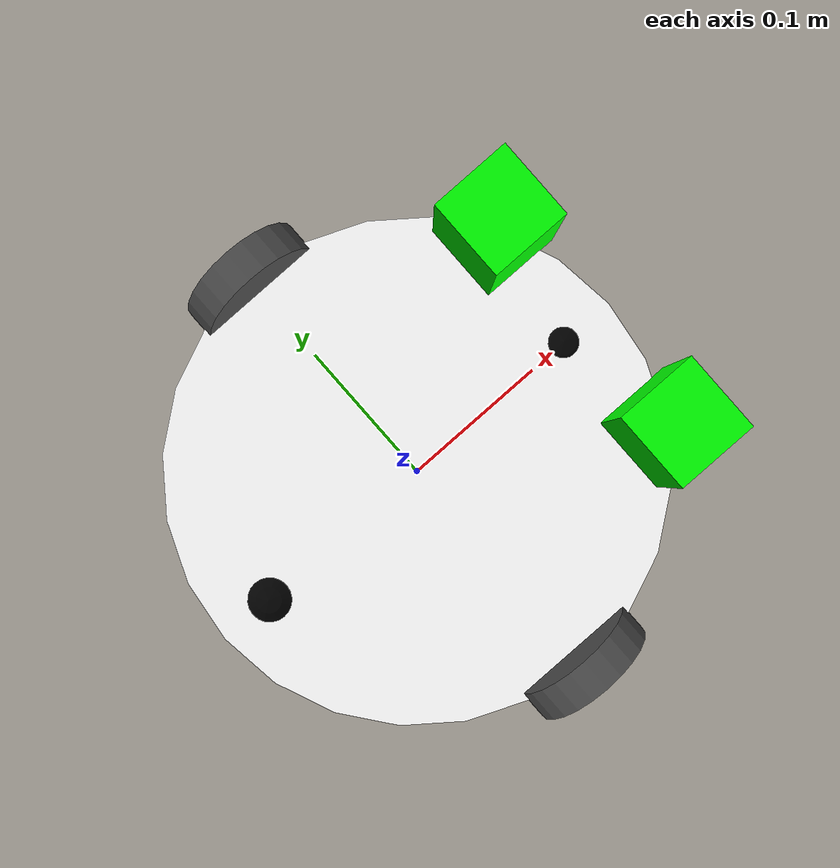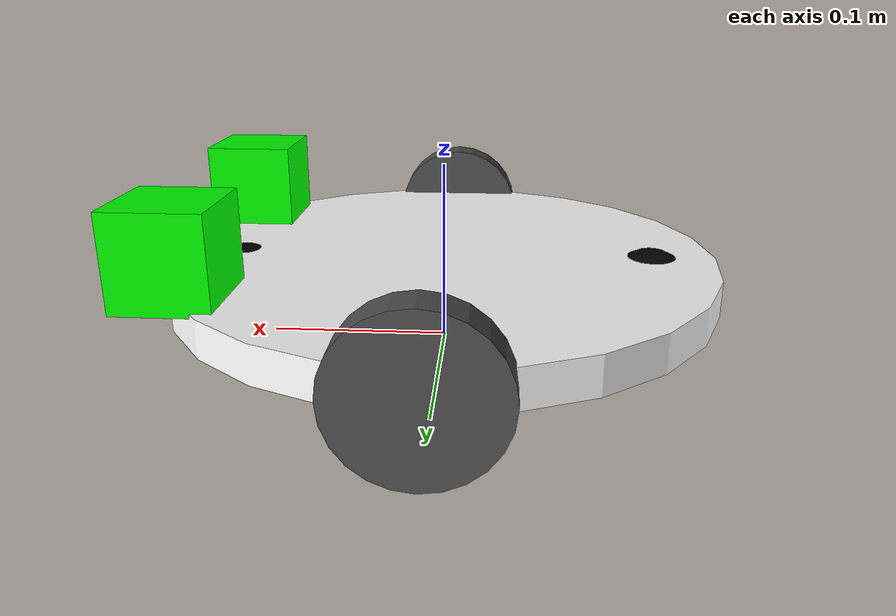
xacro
<?xml version="1.0"?>
<robot name="differential_wheeled_robot" xmlns:xacro="http://ros.org/wiki/xacro">

  <xacro:include filename="$(find mastering_ros_robot_description_pkg)/urdf/wheel.urdf.xacro" />

<!-- Defining the colors used in this robot -->
  <material name="Black">
    <color rgba="0.0 0.0 0.0 1.0"/>
  </material>

  <material name="Red">
    <color rgba="0.8 0.0 0.0 1.0"/>
  </material>

  <material name="White">
    <color rgba="1.0 1.0 1.0 1.0"/>
  </material>

  <material name="Blue">
    <color rgba="0.0 0.0 0.8 1.0"/>
  </material>

  <material name="Green">
    <color rgba="0.0 1.0 0.0 1.0"/>
  </material>

  <!-- PROPERTY LIST -->
  <!--All units in m-kg-s-radians unit system -->
  <xacro:property name="M_PI" value="3.1415926535897931" />
  <xacro:property name="M_PI_2" value="1.570796327" />
  <xacro:property name="DEG_TO_RAD" value="0.017453293" />

  <!-- Main body radius and height -->
  <!-- Main Body Cylinder base   -->
  <xacro:property name="base_height" value="0.02" />
  <xacro:property name="base_radius" value="0.15" />
  <xacro:property name="base_mass" value="5" /> <!-- in kg-->

  <!-- caster wheel radius and height -->
  <!-- caster wheel mass -->
  <xacro:property name="caster_f_height" value="0.04" />
  <xacro:property name="caster_f_radius" value="0.025" />
  <xacro:property name="caster_f_mass" value="0.5" /> <!-- in kg-->

  <!-- caster wheel radius and height -->
  <!-- caster wheel mass -->
  <xacro:property name="caster_b_height" value="0.04" />
  <xacro:property name="caster_b_radius" value="0.025" />
  <xacro:property name="caster_b_mass" value="0.5" /> <!-- in kg-->

  <!-- Wheels -->

  <xacro:property name="wheel_mass" value="2.5" /> --> <!-- in kg-->

  <xacro:property name="base_x_origin_to_wheel_origin" value="0.25" />
  <xacro:property name="base_y_origin_to_wheel_origin" value="0.3" />
  <xacro:property name="base_z_origin_to_wheel_origin" value="0.0" />

  <!-- Hokuyo Laser scanner -->
  <xacro:property name="hokuyo_size" value="0.05" />
  <xacro:property name="camera_size" value="0.05" />

  <!-- Macro for calculating inertia of cylinder -->
  <xacro:macro name="cylinder_inertia" params="m r h">
    <inertia  ixx="${m*(3*r*r+h*h)/12}" ixy = "0" ixz = "0"
              iyy="${m*(3*r*r+h*h)/12}" iyz = "0"
              izz="${m*r*r/2}" />
  </xacro:macro>

  <!-- BASE-FOOTPRINT -->
  <!-- base_footprint is a fictitious link(frame) that is on the ground right below base_link origin -->
  <link name="base_footprint">
    <inertial>
      <mass value="0.0001" />
      <origin xyz="0 0 0" />
      <inertia ixx="0.0001" ixy="0.0" ixz="0.0"
          iyy="0.0001" iyz="0.0"
          izz="0.0001" />
    </inertial>
    <visual>
        <origin xyz="0 0 0" rpy="0 0 0" />
        <geometry>
            <box size="0.001 0.001 0.001" />
        </geometry>
    </visual>
  </link>

  <gazebo reference="base_footprint">
    <turnGravityOff>false</turnGravityOff>
  </gazebo>

  <joint name="base_footprint_joint" type="fixed">
    <origin xyz="0 0 ${wheel_radius - base_z_origin_to_wheel_origin}" rpy="0 0 0" />
    <parent link="base_footprint"/>
    <child link="base_link" />
  </joint>

  <!-- BASE-LINK -->
  <!--Actual body/chassis of the robot-->
  <link name="base_link">
    <inertial>
      <mass value="${base_mass}" />
      <origin xyz="0 0 0" />
      <!--The 3x3 rotational inertia matrix. -->
        <cylinder_inertia  m="${base_mass}" r="${base_radius}" h="${base_height}" />

    </inertial>
    <visual>
      <origin xyz="0 0 0" rpy="0 0 0" />
      <geometry>

          <cylinder length="${base_height}" radius="${base_radius}" />

      </geometry>
      <material name="White" />
    </visual>
    <collision>
      <origin xyz="0 0 0" rpy="0 0 0 " />
      <geometry>

          <cylinder length="${base_height}" radius="${base_radius}" />

      </geometry>
    </collision>
  </link>
  <gazebo reference="base_link">
    <material>Gazebo/White</material>
    <turnGravityOff>false</turnGravityOff>
  </gazebo>

<!--Caster front  -->

    <link name="caster_front_link">

    <visual>
      <origin xyz="0 0.02 0" rpy="${M_PI/2} 0 0" />
      <geometry>
	<sphere radius="${caster_f_radius}" />
      </geometry>
      <material name="Black" />
    </visual>

      <collision>
        <geometry>

	<sphere radius="${caster_f_radius}" />

        </geometry>
      <origin xyz="0 0.02 0" rpy="${M_PI/2} 0 0" />
      </collision>
      <inertial>
        <mass value="${caster_f_mass}" />
        <origin xyz="0 0 0" />
        <inertia ixx="0.001" ixy="0.0" ixz="0.0"
                 iyy="0.001" iyz="0.0"
                 izz="0.001" />
      </inertial>
    </link>

 <joint name="caster_front_joint" type="fixed">
      <parent link="base_link"/>
      <child link="caster_front_link"/>
      <origin xyz="0.115 0.0 0.007" rpy="${-M_PI/2} 0 0"/>
    </joint>

  <gazebo reference="caster_front_link">
    <turnGravityOff>false</turnGravityOff>
  </gazebo>

<!--Caster back  -->

    <link name="caster_back_link">

    <visual>
      <origin xyz="0.02 0.02 0 " rpy="${M_PI/2} 0 0" />

      <geometry>

	<sphere radius="${caster_b_radius}" />

      </geometry>
      <material name="Black" />
    </visual>

      <collision>
        <geometry>
		<sphere radius="${caster_b_radius}" />
        </geometry>
      <origin xyz="0 0.02 0 " rpy="${M_PI/2} 0 0" />
      </collision>
      <inertial>
        <mass value="${caster_b_mass}" />
        <origin xyz="0 0 0" />
        <inertia ixx="0.001" ixy="0.0" ixz="0.0"
                 iyy="0.001" iyz="0.0"
                 izz="0.001" />
      </inertial>
    </link>

    <joint name="caster_back_joint" type="fixed">
      <parent link="base_link"/>
      <child link="caster_back_link"/>
      <origin xyz="-0.135 0.0 0.009" rpy="${-M_PI/2} 0 0"/>
    </joint>

  <gazebo reference="caster_back_link">
    <turnGravityOff>false</turnGravityOff>
  </gazebo>

<!-- Wheel Definitions -->

  <wheel fb="front" lr="right" parent="base_link" translateX="0" translateY="0.5" flipY="1"/>
  <wheel fb="front" lr="left" parent="base_link" translateX="0" translateY="-0.5" flipY="1"/>

  <!-- SENSORS -->

  <!-- camera_left -->
   <link name="camera_left">
    <visual>
      <origin xyz="0 0 0" rpy="0 0 0" />
      <geometry>
        <box size="${camera_size} ${camera_size} ${camera_size}"/>
      </geometry>
      <material name="Green" />
    </visual>
  </link>
  <joint name="camera_joint1" type="fixed">
    <origin xyz="${base_radius - camera_size/2} ${camera_size*1.5} ${base_height+camera_size/4}" rpy="0 0 0" />
    <parent link="base_link"/>
    <child link="camera_left" />
  </joint>
  <gazebo reference="camera_left">
    <material>Gazebo/Green</material>
    <turnGravityOff>false</turnGravityOff>
    <sensor name="camera_left" type="camera">
        <update_rate>30.0</update_rate>
        <camera>
          <horizontal_fov>1.3962634</horizontal_fov>
          <image>
            <width>800</width>
            <height>800</height>
            <format>R8G8B8</format>
          </image>
          <clip>
            <near>0.2</near>
            <far>300</far>
          </clip>
          <noise>
          <type>gaussian</type>
          <!-- Noise is sampled independently per pixel on each frame.
               That pixel's noise value is added to each of its color
               channels, which at that point lie in the range [0,1]. -->
          <mean>0.0</mean>
          <stddev>0.007</stddev>
        </noise>
        </camera>
        <plugin name="camera_controller" filename="libgazebo_ros_camera.so">
        <alwaysOn>true</alwaysOn>
        <updateRate>0.0</updateRate>
        <cameraName>camera/left</cameraName>
        <imageTopicName>image_raw</imageTopicName>
        <cameraInfoTopicName>camera_info</cameraInfoTopicName>
        <frameName>camera_left</frameName>
        <hackBaseline>0.07</hackBaseline>
        <distortionK1>0.0</distortionK1>
        <distortionK2>0.0</distortionK2>
        <distortionK3>0.0</distortionK3>
        <distortionT1>0.0</distortionT1>
        <distortionT2>0.0</distortionT2>
      </plugin>
    </sensor>
  </gazebo>

 <!-- camera_right -->
  <link name="camera_right">
   <visual>
     <origin xyz="0 0 0" rpy="0 0 0" />
     <geometry>
       <box size="${camera_size} ${camera_size} ${camera_size}"/>
     </geometry>
     <material name="Green" />
   </visual>
  </link>
  <joint name="camera_joint2" type="fixed">
   <origin xyz="${base_radius - camera_size/2} ${-camera_size*1.5} ${base_height+camera_size/4}" rpy="0 0 0" />
   <parent link="base_link"/>
   <child link="camera_right" />
  </joint>
  <gazebo reference="camera_right">
   <material>Gazebo/Green</material>
   <turnGravityOff>false</turnGravityOff>
   <sensor name="camera_right" type="camera">
       <update_rate>30.0</update_rate>
       <camera>
         <horizontal_fov>1.3962634</horizontal_fov>
         <image>
           <width>800</width>
           <height>800</height>
           <format>R8G8B8</format>
         </image>
         <clip>
           <near>0.2</near>
           <far>300</far>
         </clip>
         <noise>
         <type>gaussian</type>
         <!-- Noise is sampled independently per pixel on each frame.
              That pixel's noise value is added to each of its color
              channels, which at that point lie in the range [0,1]. -->
         <mean>0.0</mean>
         <stddev>0.007</stddev>
       </noise>
       </camera>
       <plugin name="camera_controller" filename="libgazebo_ros_camera.so">
       <alwaysOn>true</alwaysOn>
       <updateRate>0.0</updateRate>
       <cameraName>camera/right</cameraName>
       <imageTopicName>image_raw</imageTopicName>
       <cameraInfoTopicName>camera_info</cameraInfoTopicName>
       <frameName>camera_right</frameName>
       <hackBaseline>0.07</hackBaseline>
       <distortionK1>0.0</distortionK1>
       <distortionK2>0.0</distortionK2>
       <distortionK3>0.0</distortionK3>
       <distortionT1>0.0</distortionT1>
       <distortionT2>0.0</distortionT2>
     </plugin>
   </sensor>
  </gazebo>

  <!-- Differential drive controller  -->
  <gazebo>
    <plugin name="differential_drive_controller" filename="libgazebo_ros_diff_drive.so">
      <legacyMode>true</legacyMode>
      <rosDebugLevel>Debug</rosDebugLevel>
      <publishWheelTF>false</publishWheelTF>
      <robotNamespace>/</robotNamespace>
      <publishTf>1</publishTf>
      <publishWheelJointState>false</publishWheelJointState>
      <alwaysOn>true</alwaysOn>
      <updateRate>100.0</updateRate>
      <leftJoint>front_left_wheel_joint</leftJoint>
      <rightJoint>front_right_wheel_joint</rightJoint>
      <wheelSeparation>${2*base_radius}</wheelSeparation>
      <wheelDiameter>${2*wheel_radius}</wheelDiameter>
      <broadcastTF>1</broadcastTF>
      <wheelTorque>30</wheelTorque>
      <wheelAcceleration>1.8</wheelAcceleration>
      <commandTopic>cmd_vel</commandTopic>
      <odometryFrame>odom</odometryFrame>
      <odometryTopic>odom</odometryTopic>
      <robotBaseFrame>base_footprint</robotBaseFrame>

    </plugin>
  </gazebo>

</robot>

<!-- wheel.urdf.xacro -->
<robot name="wheel" xmlns:xacro="http://www.ros.org/wiki/xacro">

  <!-- Wheels -->
  <property name="wheel_radius" value="0.04" />
  <property name="wheel_height" value="0.02" />
  <property name="wheel_mass" value="2.5" /> <!-- in kg-->

  <property name="base_x_origin_to_wheel_origin" value="0.25" />
  <property name="base_y_origin_to_wheel_origin" value="0.3" />
  <property name="base_z_origin_to_wheel_origin" value="0.0" />

  <macro name="cylinder_inertia" params="m r h">
    <inertia  ixx="${m*(3*r*r+h*h)/12}" ixy = "0" ixz = "0"
              iyy="${m*(3*r*r+h*h)/12}" iyz = "0"
              izz="${m*r*r/2}" />
  </macro>

  <xacro:macro name="wheel" params="fb lr parent translateX translateY flipY"> <!--fb : front, back ; lr: left, right -->
    <link name="${fb}_${lr}_wheel">
      <visual>
        <origin xyz="0 0 0" rpy="${flipY*M_PI/2} 0  0 " />
        <geometry>
          <cylinder length="${wheel_height}" radius="${wheel_radius}" />
        </geometry>
        <material name="DarkGray" />
      </visual>
      <collision>
        <origin xyz="0 0 0" rpy="${flipY*M_PI/2} 0 0 " />
        <geometry>
          <cylinder length="${wheel_height}" radius="${wheel_radius}" />
        </geometry>
      </collision>
      <inertial>
        <mass value="${wheel_mass}" />
        <origin xyz="0 0 0" />
        <cylinder_inertia  m="${wheel_mass}" r="${wheel_radius}" h="${wheel_height}" />
      </inertial>
    </link>

    <gazebo reference="${fb}_${lr}_wheel">
      <mu1 value="1.0"/>
      <mu2 value="1.0"/>
      <kp  value="10000000.0" />
      <kd  value="1.0" />
      <fdir1 value="1 0 0"/>
      <material>Gazebo/Grey</material>
      <turnGravityOff>false</turnGravityOff>
    </gazebo>

    <joint name="${fb}_${lr}_wheel_joint" type="continuous">
      <parent link="${parent}"/>
      <child link="${fb}_${lr}_wheel"/>
      <origin xyz="${translateX * base_x_origin_to_wheel_origin} ${translateY * base_y_origin_to_wheel_origin} ${base_z_origin_to_wheel_origin}" rpy="0 0 0" />
      <axis xyz="0 1 0" rpy="0  0" />
      <limit effort="100" velocity="100"/>
      <joint_properties damping="0.0" friction="0.0"/>
    </joint>

    <!-- Transmission is important to link the joints and the controller -->
    <transmission name="${fb}_${lr}_wheel_joint_trans">
      <type>transmission_interface/SimpleTransmission</type>
      <joint name="${fb}_${lr}_wheel_joint" />
      <actuator name="${fb}_${lr}_wheel_joint_motor">
        <hardwareInterface>EffortJointInterface</hardwareInterface>
        <mechanicalReduction>1</mechanicalReduction>
      </actuator>
    </transmission>

  </xacro:macro>
</robot>
